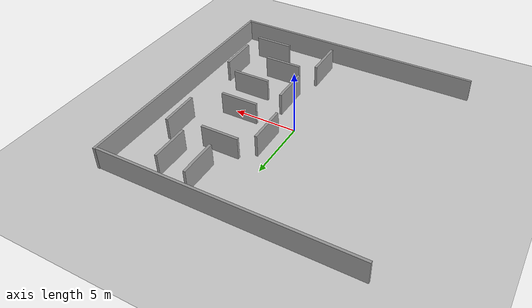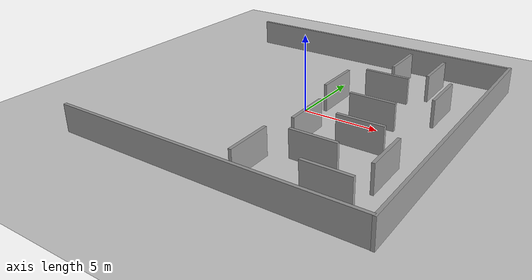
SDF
<sdf version="1.7">
 <world name="default">
  <model name="ground_plane">
   <static>1</static>
   <link name="link">
    <collision name="collision">
     <geometry><plane><normal>0 0 1</normal><size>100 100</size></plane></geometry>
     <surface>
      <contact><collide_bitmask>65535</collide_bitmask></contact>
      <friction><ode><mu>100</mu><mu2>50</mu2></ode></friction>
     </surface>
    </collision>
    <visual name="visual">
     <cast_shadows>0</cast_shadows>
     <geometry><plane><normal>0 0 1</normal><size>100 100</size></plane></geometry>
     <material>
      <script><uri>file://media/materials/scripts/gazebo.material</uri><name>Gazebo/Grey</name></script>
     </material>
    </visual>
   </link>
  </model>
  <model name="my_enviroment_1">
   <link name="link_3">
    <inertial>
     <mass>1</mass>
     <inertia>
      <ixx>0.166667</ixx>
      <ixy>0</ixy>
      <ixz>0</ixz>
      <iyy>0.166667</iyy>
      <iyz>0</iyz>
      <izz>0.166667</izz>
     </inertia>
    </inertial>
    <pose>-7.53243 3.38138 0 0 -0 0</pose>
    <visual name="visual">
     <geometry><box><size>20 0.2 1.8</size></box></geometry>
     <material>
      <lighting>1</lighting>
      <script><uri>file://media/materials/scripts/gazebo.material</uri><name>Gazebo/Grey</name></script>
      <shader type="pixel"><normal_map>__default__</normal_map></shader>
      <ambient>0.3 0.3 0.3 1</ambient>
      <diffuse>0.7 0.7 0.7 1</diffuse>
      <specular>0.01 0.01 0.01 1</specular>
      <emissive>0 0 0 1</emissive>
     </material>
    </visual>
    <collision name="collision">
     <geometry><box><size>20 0.2 1.8</size></box></geometry>
     <surface>
      <friction>
       <ode><mu>1</mu><mu2>1</mu2><fdir1>0 0 0</fdir1><slip1>0</slip1><slip2>0</slip2></ode>
       <torsional>
        <coefficient>1</coefficient>
        <patch_radius>0</patch_radius>
        <surface_radius>0</surface_radius>
        <use_patch_radius>1</use_patch_radius>
        <ode><slip>0</slip></ode>
       </torsional>
      </friction>
      <bounce><restitution_coefficient>0</restitution_coefficient><threshold>1e+06</threshold></bounce>
      <contact>
       <collide_without_contact>0</collide_without_contact>
       <collide_without_contact_bitmask>1</collide_without_contact_bitmask>
       <collide_bitmask>1</collide_bitmask>
       <ode>
        <soft_cfm>0</soft_cfm>
        <soft_erp>0.2</soft_erp>
        <kp>1e+13</kp>
        <kd>1</kd>
        <max_vel>0.01</max_vel>
        <min_depth>0</min_depth>
       </ode>
       <bullet>
        <split_impulse>1</split_impulse>
        <split_impulse_penetration_threshold>-0.01</split_impulse_penetration_threshold>
        <soft_cfm>0</soft_cfm>
        <soft_erp>0.2</soft_erp>
        <kp>1e+13</kp>
        <kd>1</kd>
       </bullet>
      </contact>
     </surface>
    </collision>
   </link>
   <link name="link_3_clone">
    <inertial>
     <mass>1</mass>
     <inertia>
      <ixx>0.166667</ixx>
      <ixy>0</ixy>
      <ixz>0</ixz>
      <iyy>0.166667</iyy>
      <iyz>0</iyz>
      <izz>0.166667</izz>
     </inertia>
    </inertial>
    <pose>-7.51874 -16.3639 -0 0 -0 0</pose>
    <visual name="visual">
     <geometry><box><size>20 0.2 1.8</size></box></geometry>
     <material>
      <lighting>1</lighting>
      <script><uri>file://media/materials/scripts/gazebo.material</uri><name>Gazebo/Grey</name></script>
      <shader type="pixel"><normal_map>__default__</normal_map></shader>
      <ambient>0.3 0.3 0.3 1</ambient>
      <diffuse>0.7 0.7 0.7 1</diffuse>
      <specular>0.01 0.01 0.01 1</specular>
      <emissive>0 0 0 1</emissive>
     </material>
    </visual>
    <collision name="collision">
     <geometry><box><size>20 0.2 1.8</size></box></geometry>
     <surface>
      <friction>
       <ode><mu>1</mu><mu2>1</mu2><fdir1>0 0 0</fdir1><slip1>0</slip1><slip2>0</slip2></ode>
       <torsional>
        <coefficient>1</coefficient>
        <patch_radius>0</patch_radius>
        <surface_radius>0</surface_radius>
        <use_patch_radius>1</use_patch_radius>
        <ode><slip>0</slip></ode>
       </torsional>
      </friction>
      <bounce><restitution_coefficient>0</restitution_coefficient><threshold>1e+06</threshold></bounce>
      <contact>
       <collide_without_contact>0</collide_without_contact>
       <collide_without_contact_bitmask>1</collide_without_contact_bitmask>
       <collide_bitmask>1</collide_bitmask>
       <ode>
        <soft_cfm>0</soft_cfm>
        <soft_erp>0.2</soft_erp>
        <kp>1e+13</kp>
        <kd>1</kd>
        <max_vel>0.01</max_vel>
        <min_depth>0</min_depth>
       </ode>
       <bullet>
        <split_impulse>1</split_impulse>
        <split_impulse_penetration_threshold>-0.01</split_impulse_penetration_threshold>
        <soft_cfm>0</soft_cfm>
        <soft_erp>0.2</soft_erp>
        <kp>1e+13</kp>
        <kd>1</kd>
       </bullet>
      </contact>
     </surface>
    </collision>
   </link>
   <link name="link_3_clone_clone_clone_0_clone_clone_clone_2">
    <inertial>
     <mass>1</mass>
     <inertia>
      <ixx>0.166667</ixx>
      <ixy>0</ixy>
      <ixz>0</ixz>
      <iyy>0.166667</iyy>
      <iyz>0</iyz>
      <izz>0.166667</izz>
     </inertia>
    </inertial>
    <pose>-4.14923 0.954091 0 0 0 -1.56054</pose>
    <visual name="visual">
     <geometry><box><size>3 0.2 1.8</size></box></geometry>
     <material>
      <lighting>1</lighting>
      <script><uri>file://media/materials/scripts/gazebo.material</uri><name>Gazebo/Grey</name></script>
      <shader type="pixel"><normal_map>__default__</normal_map></shader>
      <ambient>0.3 0.3 0.3 1</ambient>
      <diffuse>0.7 0.7 0.7 1</diffuse>
      <specular>0.01 0.01 0.01 1</specular>
      <emissive>0 0 0 1</emissive>
     </material>
    </visual>
    <collision name="collision">
     <geometry><box><size>3 0.2 1.8</size></box></geometry>
     <surface>
      <friction>
       <ode><mu>1</mu><mu2>1</mu2><fdir1>0 0 0</fdir1><slip1>0</slip1><slip2>0</slip2></ode>
       <torsional>
        <coefficient>1</coefficient>
        <patch_radius>0</patch_radius>
        <surface_radius>0</surface_radius>
        <use_patch_radius>1</use_patch_radius>
        <ode><slip>0</slip></ode>
       </torsional>
      </friction>
      <bounce><restitution_coefficient>0</restitution_coefficient><threshold>1e+06</threshold></bounce>
      <contact>
       <collide_without_contact>0</collide_without_contact>
       <collide_without_contact_bitmask>1</collide_without_contact_bitmask>
       <collide_bitmask>1</collide_bitmask>
       <ode>
        <soft_cfm>0</soft_cfm>
        <soft_erp>0.2</soft_erp>
        <kp>1e+13</kp>
        <kd>1</kd>
        <max_vel>0.01</max_vel>
        <min_depth>0</min_depth>
       </ode>
       <bullet>
        <split_impulse>1</split_impulse>
        <split_impulse_penetration_threshold>-0.01</split_impulse_penetration_threshold>
        <soft_cfm>0</soft_cfm>
        <soft_erp>0.2</soft_erp>
        <kp>1e+13</kp>
        <kd>1</kd>
       </bullet>
      </contact>
     </surface>
    </collision>
   </link>
   <link name="link_3_clone_clone_clone_0_clone_clone_clone_3">
    <inertial>
     <mass>1</mass>
     <inertia>
      <ixx>0.166667</ixx>
      <ixy>0</ixy>
      <ixz>0</ixz>
      <iyy>0.166667</iyy>
      <iyz>0</iyz>
      <izz>0.166667</izz>
     </inertia>
    </inertial>
    <pose>0.195534 -2.81946 -0 0 0 -1.56054</pose>
    <visual name="visual">
     <geometry><box><size>3 0.2 1.8</size></box></geometry>
     <material>
      <lighting>1</lighting>
      <script><uri>file://media/materials/scripts/gazebo.material</uri><name>Gazebo/Grey</name></script>
      <shader type="pixel"><normal_map>__default__</normal_map></shader>
      <ambient>0.3 0.3 0.3 1</ambient>
      <diffuse>0.7 0.7 0.7 1</diffuse>
      <specular>0.01 0.01 0.01 1</specular>
      <emissive>0 0 0 1</emissive>
     </material>
    </visual>
    <collision name="collision">
     <geometry><box><size>3 0.2 1.8</size></box></geometry>
     <surface>
      <friction>
       <ode><mu>1</mu><mu2>1</mu2><fdir1>0 0 0</fdir1><slip1>0</slip1><slip2>0</slip2></ode>
       <torsional>
        <coefficient>1</coefficient>
        <patch_radius>0</patch_radius>
        <surface_radius>0</surface_radius>
        <use_patch_radius>1</use_patch_radius>
        <ode><slip>0</slip></ode>
       </torsional>
      </friction>
      <bounce><restitution_coefficient>0</restitution_coefficient><threshold>1e+06</threshold></bounce>
      <contact>
       <collide_without_contact>0</collide_without_contact>
       <collide_without_contact_bitmask>1</collide_without_contact_bitmask>
       <collide_bitmask>1</collide_bitmask>
       <ode>
        <soft_cfm>0</soft_cfm>
        <soft_erp>0.2</soft_erp>
        <kp>1e+13</kp>
        <kd>1</kd>
        <max_vel>0.01</max_vel>
        <min_depth>0</min_depth>
       </ode>
       <bullet>
        <split_impulse>1</split_impulse>
        <split_impulse_penetration_threshold>-0.01</split_impulse_penetration_threshold>
        <soft_cfm>0</soft_cfm>
        <soft_erp>0.2</soft_erp>
        <kp>1e+13</kp>
        <kd>1</kd>
       </bullet>
      </contact>
     </surface>
    </collision>
   </link>
   <link name="link_3_clone_clone_clone_0_clone_clone_clone_4">
    <inertial>
     <mass>1</mass>
     <inertia>
      <ixx>0.166667</ixx>
      <ixy>0</ixy>
      <ixz>0</ixz>
      <iyy>0.166667</iyy>
      <iyz>0</iyz>
      <izz>0.166667</izz>
     </inertia>
    </inertial>
    <pose>0.515256 -11.2153 -0 0 0 -1.56054</pose>
    <visual name="visual">
     <geometry><box><size>3 0.2 1.8</size></box></geometry>
     <material>
      <lighting>1</lighting>
      <script><uri>file://media/materials/scripts/gazebo.material</uri><name>Gazebo/Grey</name></script>
      <shader type="pixel"><normal_map>__default__</normal_map></shader>
      <ambient>0.3 0.3 0.3 1</ambient>
      <diffuse>0.7 0.7 0.7 1</diffuse>
      <specular>0.01 0.01 0.01 1</specular>
      <emissive>0 0 0 1</emissive>
     </material>
    </visual>
    <collision name="collision">
     <geometry><box><size>3 0.2 1.8</size></box></geometry>
     <surface>
      <friction>
       <ode><mu>1</mu><mu2>1</mu2><fdir1>0 0 0</fdir1><slip1>0</slip1><slip2>0</slip2></ode>
       <torsional>
        <coefficient>1</coefficient>
        <patch_radius>0</patch_radius>
        <surface_radius>0</surface_radius>
        <use_patch_radius>1</use_patch_radius>
        <ode><slip>0</slip></ode>
       </torsional>
      </friction>
      <bounce><restitution_coefficient>0</restitution_coefficient><threshold>1e+06</threshold></bounce>
      <contact>
       <collide_without_contact>0</collide_without_contact>
       <collide_without_contact_bitmask>1</collide_without_contact_bitmask>
       <collide_bitmask>1</collide_bitmask>
       <ode>
        <soft_cfm>0</soft_cfm>
        <soft_erp>0.2</soft_erp>
        <kp>1e+13</kp>
        <kd>1</kd>
        <max_vel>0.01</max_vel>
        <min_depth>0</min_depth>
       </ode>
       <bullet>
        <split_impulse>1</split_impulse>
        <split_impulse_penetration_threshold>-0.01</split_impulse_penetration_threshold>
        <soft_cfm>0</soft_cfm>
        <soft_erp>0.2</soft_erp>
        <kp>1e+13</kp>
        <kd>1</kd>
       </bullet>
      </contact>
     </surface>
    </collision>
   </link>
   <link name="link_3_clone_clone_clone_0_clone_clone_clone_5">
    <inertial>
     <mass>1</mass>
     <inertia>
      <ixx>0.166667</ixx>
      <ixy>0</ixy>
      <ixz>0</ixz>
      <iyy>0.166667</iyy>
      <iyz>0</iyz>
      <izz>0.166667</izz>
     </inertia>
    </inertial>
    <pose>-1.56045 0.578098 0 0 0 -1.56054</pose>
    <visual name="visual">
     <geometry><box><size>3 0.2 1.8</size></box></geometry>
     <material>
      <lighting>1</lighting>
      <script><uri>file://media/materials/scripts/gazebo.material</uri><name>Gazebo/Grey</name></script>
      <shader type="pixel"><normal_map>__default__</normal_map></shader>
      <ambient>0.3 0.3 0.3 1</ambient>
      <diffuse>0.7 0.7 0.7 1</diffuse>
      <specular>0.01 0.01 0.01 1</specular>
      <emissive>0 0 0 1</emissive>
     </material>
    </visual>
    <collision name="collision">
     <geometry><box><size>3 0.2 1.8</size></box></geometry>
     <surface>
      <friction>
       <ode><mu>1</mu><mu2>1</mu2><fdir1>0 0 0</fdir1><slip1>0</slip1><slip2>0</slip2></ode>
       <torsional>
        <coefficient>1</coefficient>
        <patch_radius>0</patch_radius>
        <surface_radius>0</surface_radius>
        <use_patch_radius>1</use_patch_radius>
        <ode><slip>0</slip></ode>
       </torsional>
      </friction>
      <bounce><restitution_coefficient>0</restitution_coefficient><threshold>1e+06</threshold></bounce>
      <contact>
       <collide_without_contact>0</collide_without_contact>
       <collide_without_contact_bitmask>1</collide_without_contact_bitmask>
       <collide_bitmask>1</collide_bitmask>
       <ode>
        <soft_cfm>0</soft_cfm>
        <soft_erp>0.2</soft_erp>
        <kp>1e+13</kp>
        <kd>1</kd>
        <max_vel>0.01</max_vel>
        <min_depth>0</min_depth>
       </ode>
       <bullet>
        <split_impulse>1</split_impulse>
        <split_impulse_penetration_threshold>-0.01</split_impulse_penetration_threshold>
        <soft_cfm>0</soft_cfm>
        <soft_erp>0.2</soft_erp>
        <kp>1e+13</kp>
        <kd>1</kd>
       </bullet>
      </contact>
     </surface>
    </collision>
   </link>
   <link name="link_3_clone_clone_clone_0_clone_clone_clone_clone">
    <inertial>
     <mass>1</mass>
     <inertia>
      <ixx>0.166667</ixx>
      <ixy>0</ixy>
      <ixz>0</ixz>
      <iyy>0.166667</iyy>
      <iyz>0</iyz>
      <izz>0.166667</izz>
     </inertia>
    </inertial>
    <pose>-6.06281 -13.8674 -0 0 0 -1.56054</pose>
    <visual name="visual">
     <geometry><box><size>3 0.2 1.8</size></box></geometry>
     <material>
      <lighting>1</lighting>
      <script><uri>file://media/materials/scripts/gazebo.material</uri><name>Gazebo/Grey</name></script>
      <shader type="pixel"><normal_map>__default__</normal_map></shader>
      <ambient>0.3 0.3 0.3 1</ambient>
      <diffuse>0.7 0.7 0.7 1</diffuse>
      <specular>0.01 0.01 0.01 1</specular>
      <emissive>0 0 0 1</emissive>
     </material>
    </visual>
    <collision name="collision">
     <geometry><box><size>3 0.2 1.8</size></box></geometry>
     <surface>
      <friction>
       <ode><mu>1</mu><mu2>1</mu2><fdir1>0 0 0</fdir1><slip1>0</slip1><slip2>0</slip2></ode>
       <torsional>
        <coefficient>1</coefficient>
        <patch_radius>0</patch_radius>
        <surface_radius>0</surface_radius>
        <use_patch_radius>1</use_patch_radius>
        <ode><slip>0</slip></ode>
       </torsional>
      </friction>
      <bounce><restitution_coefficient>0</restitution_coefficient><threshold>1e+06</threshold></bounce>
      <contact>
       <collide_without_contact>0</collide_without_contact>
       <collide_without_contact_bitmask>1</collide_without_contact_bitmask>
       <collide_bitmask>1</collide_bitmask>
       <ode>
        <soft_cfm>0</soft_cfm>
        <soft_erp>0.2</soft_erp>
        <kp>1e+13</kp>
        <kd>1</kd>
        <max_vel>0.01</max_vel>
        <min_depth>0</min_depth>
       </ode>
       <bullet>
        <split_impulse>1</split_impulse>
        <split_impulse_penetration_threshold>-0.01</split_impulse_penetration_threshold>
        <soft_cfm>0</soft_cfm>
        <soft_erp>0.2</soft_erp>
        <kp>1e+13</kp>
        <kd>1</kd>
       </bullet>
      </contact>
     </surface>
    </collision>
   </link>
   <link name="link_3_clone_clone_clone_0_clone_clone_clone_clone_2">
    <inertial>
     <mass>1</mass>
     <inertia>
      <ixx>0.166667</ixx>
      <ixy>0</ixy>
      <ixz>0</ixz>
      <iyy>0.166667</iyy>
      <iyz>0</iyz>
      <izz>0.166667</izz>
     </inertia>
    </inertial>
    <pose>-5.44702 -9.22831 -0 0 0 -1.56054</pose>
    <visual name="visual">
     <geometry><box><size>3 0.2 1.8</size></box></geometry>
     <material>
      <lighting>1</lighting>
      <script><uri>file://media/materials/scripts/gazebo.material</uri><name>Gazebo/Grey</name></script>
      <shader type="pixel"><normal_map>__default__</normal_map></shader>
      <ambient>0.3 0.3 0.3 1</ambient>
      <diffuse>0.7 0.7 0.7 1</diffuse>
      <specular>0.01 0.01 0.01 1</specular>
      <emissive>0 0 0 1</emissive>
     </material>
    </visual>
    <collision name="collision">
     <geometry><box><size>3 0.2 1.8</size></box></geometry>
     <surface>
      <friction>
       <ode><mu>1</mu><mu2>1</mu2><fdir1>0 0 0</fdir1><slip1>0</slip1><slip2>0</slip2></ode>
       <torsional>
        <coefficient>1</coefficient>
        <patch_radius>0</patch_radius>
        <surface_radius>0</surface_radius>
        <use_patch_radius>1</use_patch_radius>
        <ode><slip>0</slip></ode>
       </torsional>
      </friction>
      <bounce><restitution_coefficient>0</restitution_coefficient><threshold>1e+06</threshold></bounce>
      <contact>
       <collide_without_contact>0</collide_without_contact>
       <collide_without_contact_bitmask>1</collide_without_contact_bitmask>
       <collide_bitmask>1</collide_bitmask>
       <ode>
        <soft_cfm>0</soft_cfm>
        <soft_erp>0.2</soft_erp>
        <kp>1e+13</kp>
        <kd>1</kd>
        <max_vel>0.01</max_vel>
        <min_depth>0</min_depth>
       </ode>
       <bullet>
        <split_impulse>1</split_impulse>
        <split_impulse_penetration_threshold>-0.01</split_impulse_penetration_threshold>
        <soft_cfm>0</soft_cfm>
        <soft_erp>0.2</soft_erp>
        <kp>1e+13</kp>
        <kd>1</kd>
       </bullet>
      </contact>
     </surface>
    </collision>
   </link>
   <link name="link_3_clone_clone_clone_0_clone_clone_clone_clone_3">
    <inertial>
     <mass>1</mass>
     <inertia>
      <ixx>0.166667</ixx>
      <ixy>0</ixy>
      <ixz>0</ixz>
      <iyy>0.166667</iyy>
      <iyz>0</iyz>
      <izz>0.166667</izz>
     </inertia>
    </inertial>
    <pose>-6.34442 -4.23749 -0 0 0 -1.56054</pose>
    <visual name="visual">
     <geometry><box><size>3 0.2 1.8</size></box></geometry>
     <material>
      <lighting>1</lighting>
      <script><uri>file://media/materials/scripts/gazebo.material</uri><name>Gazebo/Grey</name></script>
      <shader type="pixel"><normal_map>__default__</normal_map></shader>
      <ambient>0.3 0.3 0.3 1</ambient>
      <diffuse>0.7 0.7 0.7 1</diffuse>
      <specular>0.01 0.01 0.01 1</specular>
      <emissive>0 0 0 1</emissive>
     </material>
    </visual>
    <collision name="collision">
     <geometry><box><size>3 0.2 1.8</size></box></geometry>
     <surface>
      <friction>
       <ode><mu>1</mu><mu2>1</mu2><fdir1>0 0 0</fdir1><slip1>0</slip1><slip2>0</slip2></ode>
       <torsional>
        <coefficient>1</coefficient>
        <patch_radius>0</patch_radius>
        <surface_radius>0</surface_radius>
        <use_patch_radius>1</use_patch_radius>
        <ode><slip>0</slip></ode>
       </torsional>
      </friction>
      <bounce><restitution_coefficient>0</restitution_coefficient><threshold>1e+06</threshold></bounce>
      <contact>
       <collide_without_contact>0</collide_without_contact>
       <collide_without_contact_bitmask>1</collide_without_contact_bitmask>
       <collide_bitmask>1</collide_bitmask>
       <ode>
        <soft_cfm>0</soft_cfm>
        <soft_erp>0.2</soft_erp>
        <kp>1e+13</kp>
        <kd>1</kd>
        <max_vel>0.01</max_vel>
        <min_depth>0</min_depth>
       </ode>
       <bullet>
        <split_impulse>1</split_impulse>
        <split_impulse_penetration_threshold>-0.01</split_impulse_penetration_threshold>
        <soft_cfm>0</soft_cfm>
        <soft_erp>0.2</soft_erp>
        <kp>1e+13</kp>
        <kd>1</kd>
       </bullet>
      </contact>
     </surface>
    </collision>
   </link>
   <link name="link_3_clone_clone_clone_1">
    <inertial>
     <mass>1</mass>
     <inertia>
      <ixx>0.166667</ixx>
      <ixy>0</ixy>
      <ixz>0</ixz>
      <iyy>0.166667</iyy>
      <iyz>0</iyz>
      <izz>0.166667</izz>
     </inertia>
    </inertial>
    <pose>-3.37205 -11.8509 -0 0 -0 0</pose>
    <visual name="visual">
     <geometry><box><size>3 0.2 1.8</size></box></geometry>
     <material>
      <lighting>1</lighting>
      <script><uri>file://media/materials/scripts/gazebo.material</uri><name>Gazebo/Grey</name></script>
      <shader type="pixel"><normal_map>__default__</normal_map></shader>
      <ambient>0.3 0.3 0.3 1</ambient>
      <diffuse>0.7 0.7 0.7 1</diffuse>
      <specular>0.01 0.01 0.01 1</specular>
      <emissive>0 0 0 1</emissive>
     </material>
    </visual>
    <collision name="collision">
     <geometry><box><size>3 0.2 1.8</size></box></geometry>
     <surface>
      <friction>
       <ode><mu>1</mu><mu2>1</mu2><fdir1>0 0 0</fdir1><slip1>0</slip1><slip2>0</slip2></ode>
       <torsional>
        <coefficient>1</coefficient>
        <patch_radius>0</patch_radius>
        <surface_radius>0</surface_radius>
        <use_patch_radius>1</use_patch_radius>
        <ode><slip>0</slip></ode>
       </torsional>
      </friction>
      <bounce><restitution_coefficient>0</restitution_coefficient><threshold>1e+06</threshold></bounce>
      <contact>
       <collide_without_contact>0</collide_without_contact>
       <collide_without_contact_bitmask>1</collide_without_contact_bitmask>
       <collide_bitmask>1</collide_bitmask>
       <ode>
        <soft_cfm>0</soft_cfm>
        <soft_erp>0.2</soft_erp>
        <kp>1e+13</kp>
        <kd>1</kd>
        <max_vel>0.01</max_vel>
        <min_depth>0</min_depth>
       </ode>
       <bullet>
        <split_impulse>1</split_impulse>
        <split_impulse_penetration_threshold>-0.01</split_impulse_penetration_threshold>
        <soft_cfm>0</soft_cfm>
        <soft_erp>0.2</soft_erp>
        <kp>1e+13</kp>
        <kd>1</kd>
       </bullet>
      </contact>
     </surface>
    </collision>
   </link>
   <link name="link_3_clone_clone_clone_2">
    <inertial>
     <mass>1</mass>
     <inertia>
      <ixx>0.166667</ixx>
      <ixy>0</ixy>
      <ixz>0</ixz>
      <iyy>0.166667</iyy>
      <iyz>0</iyz>
      <izz>0.166667</izz>
     </inertia>
    </inertial>
    <pose>-1.13856 -14.2429 -0 0 -0 0</pose>
    <visual name="visual">
     <geometry><box><size>3 0.2 1.8</size></box></geometry>
     <material>
      <lighting>1</lighting>
      <script><uri>file://media/materials/scripts/gazebo.material</uri><name>Gazebo/Grey</name></script>
      <shader type="pixel"><normal_map>__default__</normal_map></shader>
      <ambient>0.3 0.3 0.3 1</ambient>
      <diffuse>0.7 0.7 0.7 1</diffuse>
      <specular>0.01 0.01 0.01 1</specular>
      <emissive>0 0 0 1</emissive>
     </material>
    </visual>
    <collision name="collision">
     <geometry><box><size>3 0.2 1.8</size></box></geometry>
     <surface>
      <friction>
       <ode><mu>1</mu><mu2>1</mu2><fdir1>0 0 0</fdir1><slip1>0</slip1><slip2>0</slip2></ode>
       <torsional>
        <coefficient>1</coefficient>
        <patch_radius>0</patch_radius>
        <surface_radius>0</surface_radius>
        <use_patch_radius>1</use_patch_radius>
        <ode><slip>0</slip></ode>
       </torsional>
      </friction>
      <bounce><restitution_coefficient>0</restitution_coefficient><threshold>1e+06</threshold></bounce>
      <contact>
       <collide_without_contact>0</collide_without_contact>
       <collide_without_contact_bitmask>1</collide_without_contact_bitmask>
       <collide_bitmask>1</collide_bitmask>
       <ode>
        <soft_cfm>0</soft_cfm>
        <soft_erp>0.2</soft_erp>
        <kp>1e+13</kp>
        <kd>1</kd>
        <max_vel>0.01</max_vel>
        <min_depth>0</min_depth>
       </ode>
       <bullet>
        <split_impulse>1</split_impulse>
        <split_impulse_penetration_threshold>-0.01</split_impulse_penetration_threshold>
        <soft_cfm>0</soft_cfm>
        <soft_erp>0.2</soft_erp>
        <kp>1e+13</kp>
        <kd>1</kd>
       </bullet>
      </contact>
     </surface>
    </collision>
   </link>
   <link name="link_3_clone_clone_clone_3">
    <inertial>
     <mass>1</mass>
     <inertia>
      <ixx>0.166667</ixx>
      <ixy>0</ixy>
      <ixz>0</ixz>
      <iyy>0.166667</iyy>
      <iyz>0</iyz>
      <izz>0.166667</izz>
     </inertia>
    </inertial>
    <pose>-2.19358 -8.90327 -0 0 -0 0</pose>
    <visual name="visual">
     <geometry><box><size>3 0.2 1.8</size></box></geometry>
     <material>
      <lighting>1</lighting>
      <script><uri>file://media/materials/scripts/gazebo.material</uri><name>Gazebo/Grey</name></script>
      <shader type="pixel"><normal_map>__default__</normal_map></shader>
      <ambient>0.3 0.3 0.3 1</ambient>
      <diffuse>0.7 0.7 0.7 1</diffuse>
      <specular>0.01 0.01 0.01 1</specular>
      <emissive>0 0 0 1</emissive>
     </material>
    </visual>
    <collision name="collision">
     <geometry><box><size>3 0.2 1.8</size></box></geometry>
     <surface>
      <friction>
       <ode><mu>1</mu><mu2>1</mu2><fdir1>0 0 0</fdir1><slip1>0</slip1><slip2>0</slip2></ode>
       <torsional>
        <coefficient>1</coefficient>
        <patch_radius>0</patch_radius>
        <surface_radius>0</surface_radius>
        <use_patch_radius>1</use_patch_radius>
        <ode><slip>0</slip></ode>
       </torsional>
      </friction>
      <bounce><restitution_coefficient>0</restitution_coefficient><threshold>1e+06</threshold></bounce>
      <contact>
       <collide_without_contact>0</collide_without_contact>
       <collide_without_contact_bitmask>1</collide_without_contact_bitmask>
       <collide_bitmask>1</collide_bitmask>
       <ode>
        <soft_cfm>0</soft_cfm>
        <soft_erp>0.2</soft_erp>
        <kp>1e+13</kp>
        <kd>1</kd>
        <max_vel>0.01</max_vel>
        <min_depth>0</min_depth>
       </ode>
       <bullet>
        <split_impulse>1</split_impulse>
        <split_impulse_penetration_threshold>-0.01</split_impulse_penetration_threshold>
        <soft_cfm>0</soft_cfm>
        <soft_erp>0.2</soft_erp>
        <kp>1e+13</kp>
        <kd>1</kd>
       </bullet>
      </contact>
     </surface>
    </collision>
   </link>
   <link name="link_3_clone_clone_clone_4">
    <inertial>
     <mass>1</mass>
     <inertia>
      <ixx>0.166667</ixx>
      <ixy>0</ixy>
      <ixz>0</ixz>
      <iyy>0.166667</iyy>
      <iyz>0</iyz>
      <izz>0.166667</izz>
     </inertia>
    </inertial>
    <pose>-2.96558 -5.9194 -0 0 -0 0</pose>
    <visual name="visual">
     <geometry><box><size>3 0.2 1.8</size></box></geometry>
     <material>
      <lighting>1</lighting>
      <script><uri>file://media/materials/scripts/gazebo.material</uri><name>Gazebo/Grey</name></script>
      <shader type="pixel"><normal_map>__default__</normal_map></shader>
      <ambient>0.3 0.3 0.3 1</ambient>
      <diffuse>0.7 0.7 0.7 1</diffuse>
      <specular>0.01 0.01 0.01 1</specular>
      <emissive>0 0 0 1</emissive>
     </material>
    </visual>
    <collision name="collision">
     <geometry><box><size>3 0.2 1.8</size></box></geometry>
     <surface>
      <friction>
       <ode><mu>1</mu><mu2>1</mu2><fdir1>0 0 0</fdir1><slip1>0</slip1><slip2>0</slip2></ode>
       <torsional>
        <coefficient>1</coefficient>
        <patch_radius>0</patch_radius>
        <surface_radius>0</surface_radius>
        <use_patch_radius>1</use_patch_radius>
        <ode><slip>0</slip></ode>
       </torsional>
      </friction>
      <bounce><restitution_coefficient>0</restitution_coefficient><threshold>1e+06</threshold></bounce>
      <contact>
       <collide_without_contact>0</collide_without_contact>
       <collide_without_contact_bitmask>1</collide_without_contact_bitmask>
       <collide_bitmask>1</collide_bitmask>
       <ode>
        <soft_cfm>0</soft_cfm>
        <soft_erp>0.2</soft_erp>
        <kp>1e+13</kp>
        <kd>1</kd>
        <max_vel>0.01</max_vel>
        <min_depth>0</min_depth>
       </ode>
       <bullet>
        <split_impulse>1</split_impulse>
        <split_impulse_penetration_threshold>-0.01</split_impulse_penetration_threshold>
        <soft_cfm>0</soft_cfm>
        <soft_erp>0.2</soft_erp>
        <kp>1e+13</kp>
        <kd>1</kd>
       </bullet>
      </contact>
     </surface>
    </collision>
   </link>
   <link name="link_3_clone_clone_clone_5">
    <inertial>
     <mass>1</mass>
     <inertia>
      <ixx>0.166667</ixx>
      <ixy>0</ixy>
      <ixz>0</ixz>
      <iyy>0.166667</iyy>
      <iyz>0</iyz>
      <izz>0.166667</izz>
     </inertia>
    </inertial>
    <pose>-3.92575 -1.93676 -0 0 -0 0</pose>
    <visual name="visual">
     <geometry><box><size>3 0.2 1.8</size></box></geometry>
     <material>
      <lighting>1</lighting>
      <script><uri>file://media/materials/scripts/gazebo.material</uri><name>Gazebo/Grey</name></script>
      <shader type="pixel"><normal_map>__default__</normal_map></shader>
      <ambient>0.3 0.3 0.3 1</ambient>
      <diffuse>0.7 0.7 0.7 1</diffuse>
      <specular>0.01 0.01 0.01 1</specular>
      <emissive>0 0 0 1</emissive>
     </material>
    </visual>
    <collision name="collision">
     <geometry><box><size>3 0.2 1.8</size></box></geometry>
     <surface>
      <friction>
       <ode><mu>1</mu><mu2>1</mu2><fdir1>0 0 0</fdir1><slip1>0</slip1><slip2>0</slip2></ode>
       <torsional>
        <coefficient>1</coefficient>
        <patch_radius>0</patch_radius>
        <surface_radius>0</surface_radius>
        <use_patch_radius>1</use_patch_radius>
        <ode><slip>0</slip></ode>
       </torsional>
      </friction>
      <bounce><restitution_coefficient>0</restitution_coefficient><threshold>1e+06</threshold></bounce>
      <contact>
       <collide_without_contact>0</collide_without_contact>
       <collide_without_contact_bitmask>1</collide_without_contact_bitmask>
       <collide_bitmask>1</collide_bitmask>
       <ode>
        <soft_cfm>0</soft_cfm>
        <soft_erp>0.2</soft_erp>
        <kp>1e+13</kp>
        <kd>1</kd>
        <max_vel>0.01</max_vel>
        <min_depth>0</min_depth>
       </ode>
       <bullet>
        <split_impulse>1</split_impulse>
        <split_impulse_penetration_threshold>-0.01</split_impulse_penetration_threshold>
        <soft_cfm>0</soft_cfm>
        <soft_erp>0.2</soft_erp>
        <kp>1e+13</kp>
        <kd>1</kd>
       </bullet>
      </contact>
     </surface>
    </collision>
   </link>
   <link name="link_4">
    <inertial>
     <mass>1</mass>
     <inertia>
      <ixx>0.166667</ixx>
      <ixy>0</ixy>
      <ixz>0</ixz>
      <iyy>0.166667</iyy>
      <iyz>0</iyz>
      <izz>0.166667</izz>
     </inertia>
    </inertial>
    <pose>2.49649 -6.48214 -0 0 -0 0</pose>
    <visual name="visual">
     <geometry><box><size>0.2 20 1.8</size></box></geometry>
     <material>
      <lighting>1</lighting>
      <script><uri>file://media/materials/scripts/gazebo.material</uri><name>Gazebo/Grey</name></script>
      <shader type="pixel"><normal_map>__default__</normal_map></shader>
      <ambient>0.3 0.3 0.3 1</ambient>
      <diffuse>0.7 0.7 0.7 1</diffuse>
      <specular>0.01 0.01 0.01 1</specular>
      <emissive>0 0 0 1</emissive>
     </material>
    </visual>
    <collision name="collision">
     <geometry><box><size>0.2 20 1.8</size></box></geometry>
     <surface>
      <friction>
       <ode><mu>1</mu><mu2>1</mu2><fdir1>0 0 0</fdir1><slip1>0</slip1><slip2>0</slip2></ode>
       <torsional>
        <coefficient>1</coefficient>
        <patch_radius>0</patch_radius>
        <surface_radius>0</surface_radius>
        <use_patch_radius>1</use_patch_radius>
        <ode><slip>0</slip></ode>
       </torsional>
      </friction>
      <bounce><restitution_coefficient>0</restitution_coefficient><threshold>1e+06</threshold></bounce>
      <contact>
       <collide_without_contact>0</collide_without_contact>
       <collide_without_contact_bitmask>1</collide_without_contact_bitmask>
       <collide_bitmask>1</collide_bitmask>
       <ode>
        <soft_cfm>0</soft_cfm>
        <soft_erp>0.2</soft_erp>
        <kp>1e+13</kp>
        <kd>1</kd>
        <max_vel>0.01</max_vel>
        <min_depth>0</min_depth>
       </ode>
       <bullet>
        <split_impulse>1</split_impulse>
        <split_impulse_penetration_threshold>-0.01</split_impulse_penetration_threshold>
        <soft_cfm>0</soft_cfm>
        <soft_erp>0.2</soft_erp>
        <kp>1e+13</kp>
        <kd>1</kd>
       </bullet>
      </contact>
     </surface>
    </collision>
   </link>
   <static>1</static>
   <pose>7.35623 6.44717 0.886977 0 -0 0</pose>
  </model>
 </world>
</sdf>
